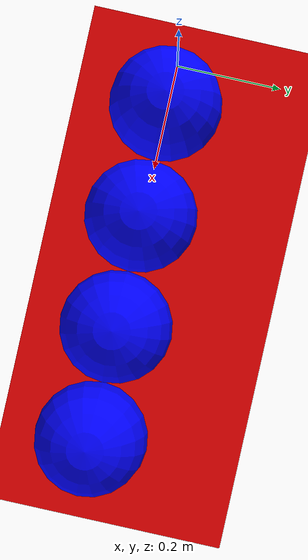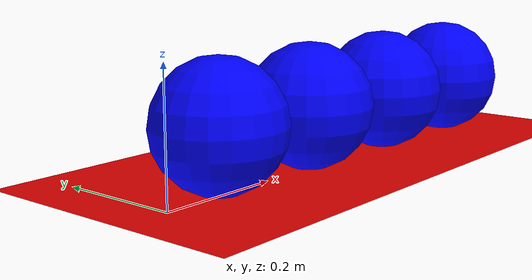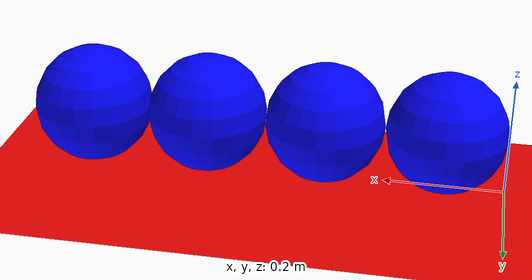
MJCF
<?xml version="1.0" ?>
<mujoco>
	<option gravity="0 0 -9.81"/>
	<worldbody>
		<light diffuse=".5 .5 .5" pos="0 0 3" dir="0 0 -1"/>
		<geom type="plane" size="10 10 0.1" rgba=".9 0 0 1"/>
		<body pos="0 0 0.1">
			<joint type="free"/>
			<geom size="0.1" type="sphere" rgba="0 0 1 1" pos="0.1 0 0"/>
			<site name="site0" pos="0.1 0 0" size="0.1" rgba="1 0 0 1"/>
			<body pos="0.2 0 0">
				<joint name="joint1" type="ball" limited="true" range="0 60"/>
				<geom size="0.1" rgba="0 0 1 1" pos="0.1 0 0"/>
				<site name="site1" pos="0.1 0 0" size="0.1" rgba="1 0 0 1"/>
				<body pos="0.2 0 0">
					<joint name="joint2" type="ball" limited="true" range="0 60"/>
					<geom size="0.1" rgba="0 0 1 1" pos="0.1 0 0"/>
					<site name="site2" pos="0.1 0 0" size="0.1" rgba="1 0 0 1"/>
					<body pos="0.2 0 0">
						<joint name="joint3" type="ball" limited="true" range="0 60"/>
						<geom size="0.1" rgba="0 0 1 1" pos="0.1 0 0"/>
						<site name="site3" pos="0.1 0 0" size="0.1" rgba="1 0 0 1"/>
					</body>
				</body>
			</body>
		</body>
	</worldbody>
	<actuator>
		<motor name="motor1" joint="joint1" gear="10"/>
		<motor name="motor2" joint="joint2" gear="10"/>
		<motor name="motor3" joint="joint3" gear="10"/>
	</actuator>
	<sensor>
		<touch name="test0" site="site0"/>
		<touch name="test1" site="site1"/>
		<touch name="test2" site="site2"/>
		<touch name="test3" site="site3"/>
	</sensor>
</mujoco>
